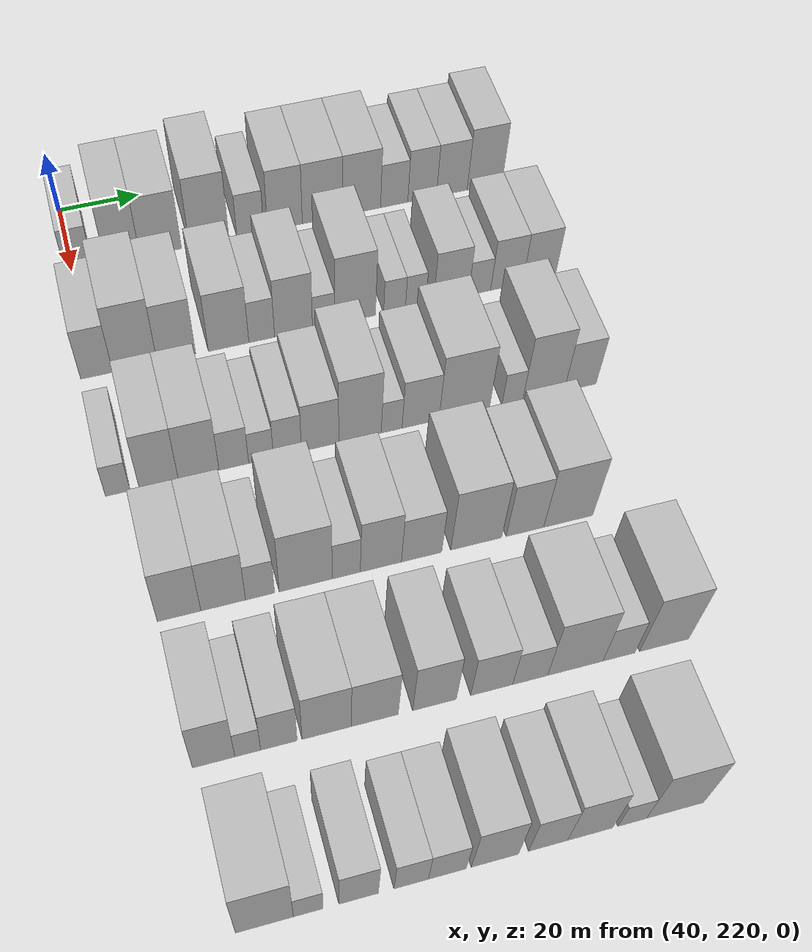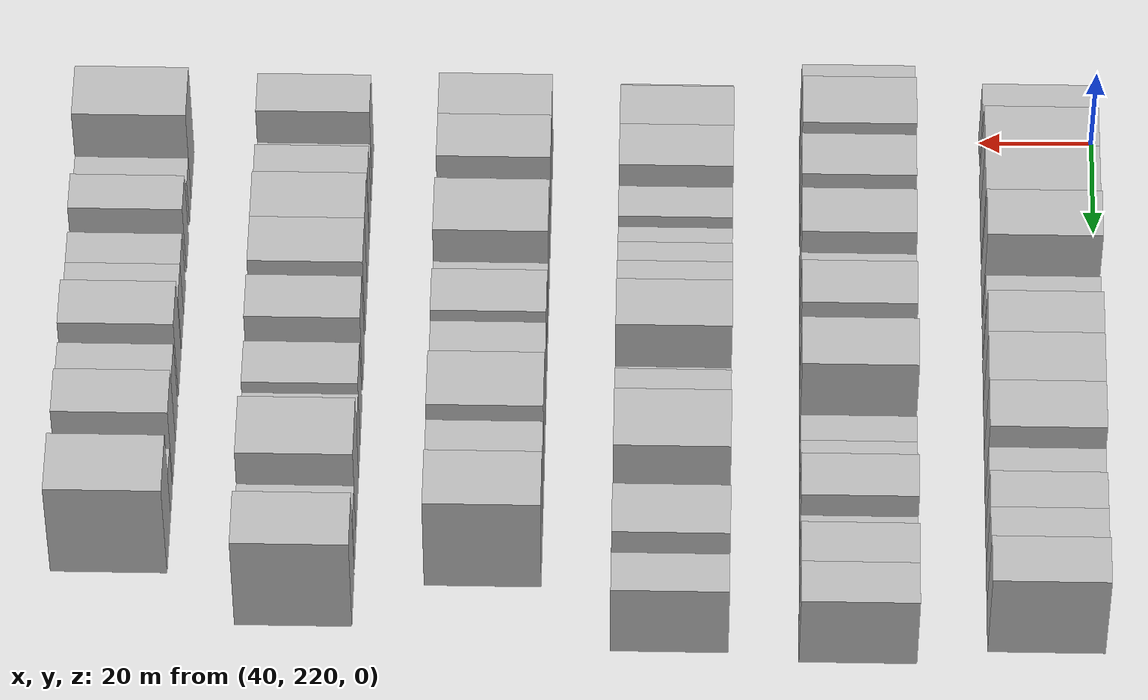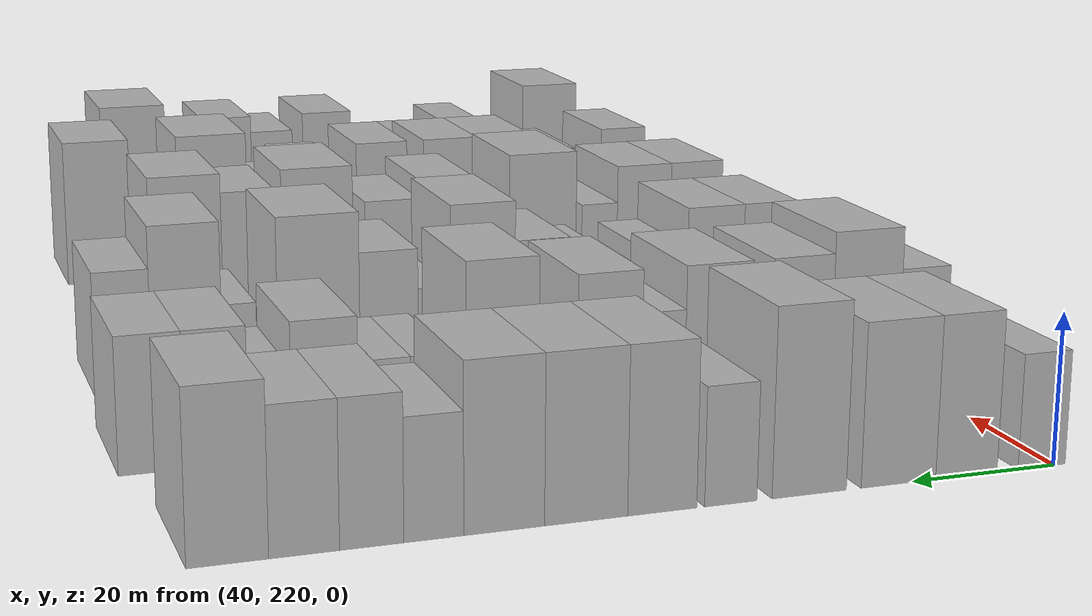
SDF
<sdf version="1.6">
 <world name="default">
  <model name="building_87">
   <static>1</static>
   <pose>50.0000 221.7886 0 0.000000 0.000000 0.000000</pose>
   <link name="link">
    <pose>0 0 7.50 0 0 0</pose>
    <collision name="collision"><geometry><box><size>20.0000 6.7713 15.0000</size></box></geometry></collision>
    <visual name="visual">
     <cast_shadows>0</cast_shadows>
     <geometry><box><size>20.0000 6.7713 15.0000</size></box></geometry>
     <material>
      <script>
       <uri>model://HANNAS_wall/materials/scripts</uri>
       <uri>model://HANNAS_wall/materials/textures</uri>
       <name>vrc/HANNAS_wall</name>
      </script>
     </material>
    </visual>
   </link>
  </model>
  <model name="building_88">
   <static>1</static>
   <pose>50.0000 232.4870 0 0.000000 0.000000 0.000000</pose>
   <link name="link">
    <pose>0 0 10.50 0 0 0</pose>
    <collision name="collision"><geometry><box><size>20.0000 8.6255 21.0000</size></box></geometry></collision>
    <visual name="visual">
     <cast_shadows>0</cast_shadows>
     <geometry><box><size>20.0000 8.6255 21.0000</size></box></geometry>
     <material>
      <script>
       <uri>model://HANNAS_wall/materials/scripts</uri>
       <uri>model://HANNAS_wall/materials/textures</uri>
       <name>vrc/HANNAS_wall</name>
      </script>
     </material>
    </visual>
   </link>
  </model>
  <model name="building_89">
   <static>1</static>
   <pose>50.0000 241.9355 0 0.000000 0.000000 0.000000</pose>
   <link name="link">
    <pose>0 0 10.50 0 0 0</pose>
    <collision name="collision"><geometry><box><size>20.0000 10.2713 21.0000</size></box></geometry></collision>
    <visual name="visual">
     <cast_shadows>0</cast_shadows>
     <geometry><box><size>20.0000 10.2713 21.0000</size></box></geometry>
     <material>
      <script>
       <uri>model://HANNAS_wall/materials/scripts</uri>
       <uri>model://HANNAS_wall/materials/textures</uri>
       <name>vrc/HANNAS_wall</name>
      </script>
     </material>
    </visual>
   </link>
  </model>
  <model name="building_90">
   <static>1</static>
   <pose>50.0000 254.0414 0 0.000000 0.000000 0.000000</pose>
   <link name="link">
    <pose>0 0 12.00 0 0 0</pose>
    <collision name="collision"><geometry><box><size>20.0000 9.9406 24.0000</size></box></geometry></collision>
    <visual name="visual">
     <cast_shadows>0</cast_shadows>
     <geometry><box><size>20.0000 9.9406 24.0000</size></box></geometry>
     <material>
      <script>
       <uri>model://HANNAS_wall/materials/scripts</uri>
       <uri>model://HANNAS_wall/materials/textures</uri>
       <name>vrc/HANNAS_wall</name>
      </script>
     </material>
    </visual>
   </link>
  </model>
  <model name="building_91">
   <static>1</static>
   <pose>50.0000 264.4250 0 0.000000 0.000000 0.000000</pose>
   <link name="link">
    <pose>0 0 7.50 0 0 0</pose>
    <collision name="collision"><geometry><box><size>20.0000 6.8265 15.0000</size></box></geometry></collision>
    <visual name="visual">
     <cast_shadows>0</cast_shadows>
     <geometry><box><size>20.0000 6.8265 15.0000</size></box></geometry>
     <material>
      <script>
       <uri>model://HANNAS_wall/materials/scripts</uri>
       <uri>model://HANNAS_wall/materials/textures</uri>
       <name>vrc/HANNAS_wall</name>
      </script>
     </material>
    </visual>
   </link>
  </model>
  <model name="building_92">
   <static>1</static>
   <pose>50.0000 273.2584 0 0.000000 0.000000 0.000000</pose>
   <link name="link">
    <pose>0 0 10.50 0 0 0</pose>
    <collision name="collision"><geometry><box><size>20.0000 8.8403 21.0000</size></box></geometry></collision>
    <visual name="visual">
     <cast_shadows>0</cast_shadows>
     <geometry><box><size>20.0000 8.8403 21.0000</size></box></geometry>
     <material>
      <script>
       <uri>model://HANNAS_wall/materials/scripts</uri>
       <uri>model://HANNAS_wall/materials/textures</uri>
       <name>vrc/HANNAS_wall</name>
      </script>
     </material>
    </visual>
   </link>
  </model>
  <model name="building_93">
   <static>1</static>
   <pose>50.0000 282.8624 0 0.000000 0.000000 0.000000</pose>
   <link name="link">
    <pose>0 0 10.50 0 0 0</pose>
    <collision name="collision"><geometry><box><size>20.0000 10.3677 21.0000</size></box></geometry></collision>
    <visual name="visual">
     <cast_shadows>0</cast_shadows>
     <geometry><box><size>20.0000 10.3677 21.0000</size></box></geometry>
     <material>
      <script>
       <uri>model://HANNAS_wall/materials/scripts</uri>
       <uri>model://HANNAS_wall/materials/textures</uri>
       <name>vrc/HANNAS_wall</name>
      </script>
     </material>
    </visual>
   </link>
  </model>
  <model name="building_94">
   <static>1</static>
   <pose>50.0000 292.9750 0 0.000000 0.000000 0.000000</pose>
   <link name="link">
    <pose>0 0 10.50 0 0 0</pose>
    <collision name="collision"><geometry><box><size>20.0000 9.8575 21.0000</size></box></geometry></collision>
    <visual name="visual">
     <cast_shadows>0</cast_shadows>
     <geometry><box><size>20.0000 9.8575 21.0000</size></box></geometry>
     <material>
      <script>
       <uri>model://HANNAS_wall/materials/scripts</uri>
       <uri>model://HANNAS_wall/materials/textures</uri>
       <name>vrc/HANNAS_wall</name>
      </script>
     </material>
    </visual>
   </link>
  </model>
  <model name="building_95">
   <static>1</static>
   <pose>50.0000 301.4691 0 0.000000 0.000000 0.000000</pose>
   <link name="link">
    <pose>0 0 7.50 0 0 0</pose>
    <collision name="collision"><geometry><box><size>20.0000 7.1307 15.0000</size></box></geometry></collision>
    <visual name="visual">
     <cast_shadows>0</cast_shadows>
     <geometry><box><size>20.0000 7.1307 15.0000</size></box></geometry>
     <material>
      <script>
       <uri>model://HANNAS_wall/materials/scripts</uri>
       <uri>model://HANNAS_wall/materials/textures</uri>
       <name>vrc/HANNAS_wall</name>
      </script>
     </material>
    </visual>
   </link>
  </model>
  <model name="building_96">
   <static>1</static>
   <pose>50.0000 308.8011 0 0.000000 0.000000 0.000000</pose>
   <link name="link">
    <pose>0 0 9.00 0 0 0</pose>
    <collision name="collision"><geometry><box><size>20.0000 7.5333 18.0000</size></box></geometry></collision>
    <visual name="visual">
     <cast_shadows>0</cast_shadows>
     <geometry><box><size>20.0000 7.5333 18.0000</size></box></geometry>
     <material>
      <script>
       <uri>model://HANNAS_wall/materials/scripts</uri>
       <uri>model://HANNAS_wall/materials/textures</uri>
       <name>vrc/HANNAS_wall</name>
      </script>
     </material>
    </visual>
   </link>
  </model>
  <model name="building_97">
   <static>1</static>
   <pose>50.0000 316.6374 0 0.000000 0.000000 0.000000</pose>
   <link name="link">
    <pose>0 0 9.00 0 0 0</pose>
    <collision name="collision"><geometry><box><size>20.0000 8.1393 18.0000</size></box></geometry></collision>
    <visual name="visual">
     <cast_shadows>0</cast_shadows>
     <geometry><box><size>20.0000 8.1393 18.0000</size></box></geometry>
     <material>
      <script>
       <uri>model://HANNAS_wall/materials/scripts</uri>
       <uri>model://HANNAS_wall/materials/textures</uri>
       <name>vrc/HANNAS_wall</name>
      </script>
     </material>
    </visual>
   </link>
  </model>
  <model name="building_98">
   <static>1</static>
   <pose>50.0000 325.3593 0 0.000000 0.000000 0.000000</pose>
   <link name="link">
    <pose>0 0 10.50 0 0 0</pose>
    <collision name="collision"><geometry><box><size>20.0000 9.3044 21.0000</size></box></geometry></collision>
    <visual name="visual">
     <cast_shadows>0</cast_shadows>
     <geometry><box><size>20.0000 9.3044 21.0000</size></box></geometry>
     <material>
      <script>
       <uri>model://HANNAS_wall/materials/scripts</uri>
       <uri>model://HANNAS_wall/materials/textures</uri>
       <name>vrc/HANNAS_wall</name>
      </script>
     </material>
    </visual>
   </link>
  </model>
  <model name="building_208">
   <static>1</static>
   <pose>82.0000 220.7102 0 0.000000 0.000000 0.000000</pose>
   <link name="link">
    <pose>0 0 9.00 0 0 0</pose>
    <collision name="collision"><geometry><box><size>20.0000 7.4942 18.0000</size></box></geometry></collision>
    <visual name="visual">
     <cast_shadows>0</cast_shadows>
     <geometry><box><size>20.0000 7.4942 18.0000</size></box></geometry>
     <material>
      <script>
       <uri>model://HANNAS_wall/materials/scripts</uri>
       <uri>model://HANNAS_wall/materials/textures</uri>
       <name>vrc/HANNAS_wall</name>
      </script>
     </material>
    </visual>
   </link>
  </model>
  <model name="building_209">
   <static>1</static>
   <pose>82.0000 229.6646 0 0.000000 0.000000 0.000000</pose>
   <link name="link">
    <pose>0 0 12.00 0 0 0</pose>
    <collision name="collision"><geometry><box><size>20.0000 10.4145 24.0000</size></box></geometry></collision>
    <visual name="visual">
     <cast_shadows>0</cast_shadows>
     <geometry><box><size>20.0000 10.4145 24.0000</size></box></geometry>
     <material>
      <script>
       <uri>model://HANNAS_wall/materials/scripts</uri>
       <uri>model://HANNAS_wall/materials/textures</uri>
       <name>vrc/HANNAS_wall</name>
      </script>
     </material>
    </visual>
   </link>
  </model>
  <model name="building_210">
   <static>1</static>
   <pose>82.0000 239.4219 0 0.000000 0.000000 0.000000</pose>
   <link name="link">
    <pose>0 0 10.50 0 0 0</pose>
    <collision name="collision"><geometry><box><size>20.0000 9.1001 21.0000</size></box></geometry></collision>
    <visual name="visual">
     <cast_shadows>0</cast_shadows>
     <geometry><box><size>20.0000 9.1001 21.0000</size></box></geometry>
     <material>
      <script>
       <uri>model://HANNAS_wall/materials/scripts</uri>
       <uri>model://HANNAS_wall/materials/textures</uri>
       <name>vrc/HANNAS_wall</name>
      </script>
     </material>
    </visual>
   </link>
  </model>
  <model name="building_211">
   <static>1</static>
   <pose>82.0000 251.8152 0 0.000000 0.000000 0.000000</pose>
   <link name="link">
    <pose>0 0 10.50 0 0 0</pose>
    <collision name="collision"><geometry><box><size>20.0000 9.6865 21.0000</size></box></geometry></collision>
    <visual name="visual">
     <cast_shadows>0</cast_shadows>
     <geometry><box><size>20.0000 9.6865 21.0000</size></box></geometry>
     <material>
      <script>
       <uri>model://HANNAS_wall/materials/scripts</uri>
       <uri>model://HANNAS_wall/materials/textures</uri>
       <name>vrc/HANNAS_wall</name>
      </script>
     </material>
    </visual>
   </link>
  </model>
  <model name="building_212">
   <static>1</static>
   <pose>82.0000 259.7631 0 0.000000 0.000000 0.000000</pose>
   <link name="link">
    <pose>0 0 7.50 0 0 0</pose>
    <collision name="collision"><geometry><box><size>20.0000 6.2091 15.0000</size></box></geometry></collision>
    <visual name="visual">
     <cast_shadows>0</cast_shadows>
     <geometry><box><size>20.0000 6.2091 15.0000</size></box></geometry>
     <material>
      <script>
       <uri>model://HANNAS_wall/materials/scripts</uri>
       <uri>model://HANNAS_wall/materials/textures</uri>
       <name>vrc/HANNAS_wall</name>
      </script>
     </material>
    </visual>
   </link>
  </model>
  <model name="building_213">
   <static>1</static>
   <pose>82.0000 267.4529 0 0.000000 0.000000 0.000000</pose>
   <link name="link">
    <pose>0 0 10.50 0 0 0</pose>
    <collision name="collision"><geometry><box><size>20.0000 9.1706 21.0000</size></box></geometry></collision>
    <visual name="visual">
     <cast_shadows>0</cast_shadows>
     <geometry><box><size>20.0000 9.1706 21.0000</size></box></geometry>
     <material>
      <script>
       <uri>model://HANNAS_wall/materials/scripts</uri>
       <uri>model://HANNAS_wall/materials/textures</uri>
       <name>vrc/HANNAS_wall</name>
      </script>
     </material>
    </visual>
   </link>
  </model>
  <model name="building_214">
   <static>1</static>
   <pose>82.0000 274.7381 0 0.000000 0.000000 0.000000</pose>
   <link name="link">
    <pose>0 0 6.00 0 0 0</pose>
    <collision name="collision"><geometry><box><size>20.0000 5.3997 12.0000</size></box></geometry></collision>
    <visual name="visual">
     <cast_shadows>0</cast_shadows>
     <geometry><box><size>20.0000 5.3997 12.0000</size></box></geometry>
     <material>
      <script>
       <uri>model://HANNAS_wall/materials/scripts</uri>
       <uri>model://HANNAS_wall/materials/textures</uri>
       <name>vrc/HANNAS_wall</name>
      </script>
     </material>
    </visual>
   </link>
  </model>
  <model name="building_215">
   <static>1</static>
   <pose>82.0000 282.4617 0 0.000000 0.000000 0.000000</pose>
   <link name="link">
    <pose>0 0 12.00 0 0 0</pose>
    <collision name="collision"><geometry><box><size>20.0000 10.0475 24.0000</size></box></geometry></collision>
    <visual name="visual">
     <cast_shadows>0</cast_shadows>
     <geometry><box><size>20.0000 10.0475 24.0000</size></box></geometry>
     <material>
      <script>
       <uri>model://HANNAS_wall/materials/scripts</uri>
       <uri>model://HANNAS_wall/materials/textures</uri>
       <name>vrc/HANNAS_wall</name>
      </script>
     </material>
    </visual>
   </link>
  </model>
  <model name="building_216">
   <static>1</static>
   <pose>82.0000 292.1893 0 0.000000 0.000000 0.000000</pose>
   <link name="link">
    <pose>0 0 6.00 0 0 0</pose>
    <collision name="collision"><geometry><box><size>20.0000 5.4076 12.0000</size></box></geometry></collision>
    <visual name="visual">
     <cast_shadows>0</cast_shadows>
     <geometry><box><size>20.0000 5.4076 12.0000</size></box></geometry>
     <material>
      <script>
       <uri>model://HANNAS_wall/materials/scripts</uri>
       <uri>model://HANNAS_wall/materials/textures</uri>
       <name>vrc/HANNAS_wall</name>
      </script>
     </material>
    </visual>
   </link>
  </model>
  <model name="building_217">
   <static>1</static>
   <pose>82.0000 297.4069 0 0.000000 0.000000 0.000000</pose>
   <link name="link">
    <pose>0 0 6.00 0 0 0</pose>
    <collision name="collision"><geometry><box><size>20.0000 5.0276 12.0000</size></box></geometry></collision>
    <visual name="visual">
     <cast_shadows>0</cast_shadows>
     <geometry><box><size>20.0000 5.0276 12.0000</size></box></geometry>
     <material>
      <script>
       <uri>model://HANNAS_wall/materials/scripts</uri>
       <uri>model://HANNAS_wall/materials/textures</uri>
       <name>vrc/HANNAS_wall</name>
      </script>
     </material>
    </visual>
   </link>
  </model>
  <model name="building_218">
   <static>1</static>
   <pose>82.0000 306.2997 0 0.000000 0.000000 0.000000</pose>
   <link name="link">
    <pose>0 0 9.00 0 0 0</pose>
    <collision name="collision"><geometry><box><size>20.0000 8.7580 18.0000</size></box></geometry></collision>
    <visual name="visual">
     <cast_shadows>0</cast_shadows>
     <geometry><box><size>20.0000 8.7580 18.0000</size></box></geometry>
     <material>
      <script>
       <uri>model://HANNAS_wall/materials/scripts</uri>
       <uri>model://HANNAS_wall/materials/textures</uri>
       <name>vrc/HANNAS_wall</name>
      </script>
     </material>
    </visual>
   </link>
  </model>
  <model name="building_219">
   <static>1</static>
   <pose>82.0000 313.4618 0 0.000000 0.000000 0.000000</pose>
   <link name="link">
    <pose>0 0 6.00 0 0 0</pose>
    <collision name="collision"><geometry><box><size>20.0000 5.5663 12.0000</size></box></geometry></collision>
    <visual name="visual">
     <cast_shadows>0</cast_shadows>
     <geometry><box><size>20.0000 5.5663 12.0000</size></box></geometry>
     <material>
      <script>
       <uri>model://HANNAS_wall/materials/scripts</uri>
       <uri>model://HANNAS_wall/materials/textures</uri>
       <name>vrc/HANNAS_wall</name>
      </script>
     </material>
    </visual>
   </link>
  </model>
  <model name="building_220">
   <static>1</static>
   <pose>82.0000 320.3215 0 0.000000 0.000000 0.000000</pose>
   <link name="link">
    <pose>0 0 9.00 0 0 0</pose>
    <collision name="collision"><geometry><box><size>20.0000 8.1531 18.0000</size></box></geometry></collision>
    <visual name="visual">
     <cast_shadows>0</cast_shadows>
     <geometry><box><size>20.0000 8.1531 18.0000</size></box></geometry>
     <material>
      <script>
       <uri>model://HANNAS_wall/materials/scripts</uri>
       <uri>model://HANNAS_wall/materials/textures</uri>
       <name>vrc/HANNAS_wall</name>
      </script>
     </material>
    </visual>
   </link>
  </model>
  <model name="building_221">
   <static>1</static>
   <pose>82.0000 328.5545 0 0.000000 0.000000 0.000000</pose>
   <link name="link">
    <pose>0 0 9.00 0 0 0</pose>
    <collision name="collision"><geometry><box><size>20.0000 8.3128 18.0000</size></box></geometry></collision>
    <visual name="visual">
     <cast_shadows>0</cast_shadows>
     <geometry><box><size>20.0000 8.3128 18.0000</size></box></geometry>
     <material>
      <script>
       <uri>model://HANNAS_wall/materials/scripts</uri>
       <uri>model://HANNAS_wall/materials/textures</uri>
       <name>vrc/HANNAS_wall</name>
      </script>
     </material>
    </visual>
   </link>
  </model>
  <model name="building_334">
   <static>1</static>
   <pose>114.0000 219.9616 0 0.000000 0.000000 0.000000</pose>
   <link name="link">
    <pose>0 0 6.00 0 0 0</pose>
    <collision name="collision"><geometry><box><size>20.0000 5.4764 12.0000</size></box></geometry></collision>
    <visual name="visual">
     <cast_shadows>0</cast_shadows>
     <geometry><box><size>20.0000 5.4764 12.0000</size></box></geometry>
     <material>
      <script>
       <uri>model://HANNAS_wall/materials/scripts</uri>
       <uri>model://HANNAS_wall/materials/textures</uri>
       <name>vrc/HANNAS_wall</name>
      </script>
     </material>
    </visual>
   </link>
  </model>
  <model name="building_335">
   <static>1</static>
   <pose>114.0000 229.0413 0 0.000000 0.000000 0.000000</pose>
   <link name="link">
    <pose>0 0 10.50 0 0 0</pose>
    <collision name="collision"><geometry><box><size>20.0000 8.6831 21.0000</size></box></geometry></collision>
    <visual name="visual">
     <cast_shadows>0</cast_shadows>
     <geometry><box><size>20.0000 8.6831 21.0000</size></box></geometry>
     <material>
      <script>
       <uri>model://HANNAS_wall/materials/scripts</uri>
       <uri>model://HANNAS_wall/materials/textures</uri>
       <name>vrc/HANNAS_wall</name>
      </script>
     </material>
    </visual>
   </link>
  </model>
  <model name="building_336">
   <static>1</static>
   <pose>114.0000 237.9569 0 0.000000 0.000000 0.000000</pose>
   <link name="link">
    <pose>0 0 10.50 0 0 0</pose>
    <collision name="collision"><geometry><box><size>20.0000 9.1480 21.0000</size></box></geometry></collision>
    <visual name="visual">
     <cast_shadows>0</cast_shadows>
     <geometry><box><size>20.0000 9.1480 21.0000</size></box></geometry>
     <material>
      <script>
       <uri>model://HANNAS_wall/materials/scripts</uri>
       <uri>model://HANNAS_wall/materials/textures</uri>
       <name>vrc/HANNAS_wall</name>
      </script>
     </material>
    </visual>
   </link>
  </model>
  <model name="building_337">
   <static>1</static>
   <pose>114.0000 245.8881 0 0.000000 0.000000 0.000000</pose>
   <link name="link">
    <pose>0 0 7.50 0 0 0</pose>
    <collision name="collision"><geometry><box><size>20.0000 6.7144 15.0000</size></box></geometry></collision>
    <visual name="visual">
     <cast_shadows>0</cast_shadows>
     <geometry><box><size>20.0000 6.7144 15.0000</size></box></geometry>
     <material>
      <script>
       <uri>model://HANNAS_wall/materials/scripts</uri>
       <uri>model://HANNAS_wall/materials/textures</uri>
       <name>vrc/HANNAS_wall</name>
      </script>
     </material>
    </visual>
   </link>
  </model>
  <model name="building_338">
   <static>1</static>
   <pose>114.0000 252.0536 0 0.000000 0.000000 0.000000</pose>
   <link name="link">
    <pose>0 0 6.00 0 0 0</pose>
    <collision name="collision"><geometry><box><size>20.0000 5.6168 12.0000</size></box></geometry></collision>
    <visual name="visual">
     <cast_shadows>0</cast_shadows>
     <geometry><box><size>20.0000 5.6168 12.0000</size></box></geometry>
     <material>
      <script>
       <uri>model://HANNAS_wall/materials/scripts</uri>
       <uri>model://HANNAS_wall/materials/textures</uri>
       <name>vrc/HANNAS_wall</name>
      </script>
     </material>
    </visual>
   </link>
  </model>
  <model name="building_339">
   <static>1</static>
   <pose>114.0000 258.0613 0 0.000000 0.000000 0.000000</pose>
   <link name="link">
    <pose>0 0 7.50 0 0 0</pose>
    <collision name="collision"><geometry><box><size>20.0000 6.3986 15.0000</size></box></geometry></collision>
    <visual name="visual">
     <cast_shadows>0</cast_shadows>
     <geometry><box><size>20.0000 6.3986 15.0000</size></box></geometry>
     <material>
      <script>
       <uri>model://HANNAS_wall/materials/scripts</uri>
       <uri>model://HANNAS_wall/materials/textures</uri>
       <name>vrc/HANNAS_wall</name>
      </script>
     </material>
    </visual>
   </link>
  </model>
  <model name="building_340">
   <static>1</static>
   <pose>114.0000 265.5376 0 0.000000 0.000000 0.000000</pose>
   <link name="link">
    <pose>0 0 9.00 0 0 0</pose>
    <collision name="collision"><geometry><box><size>20.0000 8.5540 18.0000</size></box></geometry></collision>
    <visual name="visual">
     <cast_shadows>0</cast_shadows>
     <geometry><box><size>20.0000 8.5540 18.0000</size></box></geometry>
     <material>
      <script>
       <uri>model://HANNAS_wall/materials/scripts</uri>
       <uri>model://HANNAS_wall/materials/textures</uri>
       <name>vrc/HANNAS_wall</name>
      </script>
     </material>
    </visual>
   </link>
  </model>
  <model name="building_341">
   <static>1</static>
   <pose>114.0000 274.7698 0 0.000000 0.000000 0.000000</pose>
   <link name="link">
    <pose>0 0 12.00 0 0 0</pose>
    <collision name="collision"><geometry><box><size>20.0000 9.9104 24.0000</size></box></geometry></collision>
    <visual name="visual">
     <cast_shadows>0</cast_shadows>
     <geometry><box><size>20.0000 9.9104 24.0000</size></box></geometry>
     <material>
      <script>
       <uri>model://HANNAS_wall/materials/scripts</uri>
       <uri>model://HANNAS_wall/materials/textures</uri>
       <name>vrc/HANNAS_wall</name>
      </script>
     </material>
    </visual>
   </link>
  </model>
  <model name="building_342">
   <static>1</static>
   <pose>114.0000 282.1615 0 0.000000 0.000000 0.000000</pose>
   <link name="link">
    <pose>0 0 6.00 0 0 0</pose>
    <collision name="collision"><geometry><box><size>20.0000 4.8731 12.0000</size></box></geometry></collision>
    <visual name="visual">
     <cast_shadows>0</cast_shadows>
     <geometry><box><size>20.0000 4.8731 12.0000</size></box></geometry>
     <material>
      <script>
       <uri>model://HANNAS_wall/materials/scripts</uri>
       <uri>model://HANNAS_wall/materials/textures</uri>
       <name>vrc/HANNAS_wall</name>
      </script>
     </material>
    </visual>
   </link>
  </model>
  <model name="building_343">
   <static>1</static>
   <pose>114.0000 288.9369 0 0.000000 0.000000 0.000000</pose>
   <link name="link">
    <pose>0 0 9.00 0 0 0</pose>
    <collision name="collision"><geometry><box><size>20.0000 8.6777 18.0000</size></box></geometry></collision>
    <visual name="visual">
     <cast_shadows>0</cast_shadows>
     <geometry><box><size>20.0000 8.6777 18.0000</size></box></geometry>
     <material>
      <script>
       <uri>model://HANNAS_wall/materials/scripts</uri>
       <uri>model://HANNAS_wall/materials/textures</uri>
       <name>vrc/HANNAS_wall</name>
      </script>
     </material>
    </visual>
   </link>
  </model>
  <model name="building_344">
   <static>1</static>
   <pose>114.0000 299.2702 0 0.000000 0.000000 0.000000</pose>
   <link name="link">
    <pose>0 0 12.00 0 0 0</pose>
    <collision name="collision"><geometry><box><size>20.0000 11.9890 24.0000</size></box></geometry></collision>
    <visual name="visual">
     <cast_shadows>0</cast_shadows>
     <geometry><box><size>20.0000 11.9890 24.0000</size></box></geometry>
     <material>
      <script>
       <uri>model://HANNAS_wall/materials/scripts</uri>
       <uri>model://HANNAS_wall/materials/textures</uri>
       <name>vrc/HANNAS_wall</name>
      </script>
     </material>
    </visual>
   </link>
  </model>
  <model name="building_345">
   <static>1</static>
   <pose>114.0000 310.7438 0 0.000000 0.000000 0.000000</pose>
   <link name="link">
    <pose>0 0 6.00 0 0 0</pose>
    <collision name="collision"><geometry><box><size>20.0000 4.9583 12.0000</size></box></geometry></collision>
    <visual name="visual">
     <cast_shadows>0</cast_shadows>
     <geometry><box><size>20.0000 4.9583 12.0000</size></box></geometry>
     <material>
      <script>
       <uri>model://HANNAS_wall/materials/scripts</uri>
       <uri>model://HANNAS_wall/materials/textures</uri>
       <name>vrc/HANNAS_wall</name>
      </script>
     </material>
    </visual>
   </link>
  </model>
  <model name="building_346">
   <static>1</static>
   <pose>114.0000 318.2319 0 0.000000 0.000000 0.000000</pose>
   <link name="link">
    <pose>0 0 12.00 0 0 0</pose>
    <collision name="collision"><geometry><box><size>20.0000 10.0179 24.0000</size></box></geometry></collision>
    <visual name="visual">
     <cast_shadows>0</cast_shadows>
     <geometry><box><size>20.0000 10.0179 24.0000</size></box></geometry>
     <material>
      <script>
       <uri>model://HANNAS_wall/materials/scripts</uri>
       <uri>model://HANNAS_wall/materials/textures</uri>
       <name>vrc/HANNAS_wall</name>
      </script>
     </material>
    </visual>
   </link>
  </model>
  <model name="building_347">
   <static>1</static>
   <pose>114.0000 327.1444 0 0.000000 0.000000 0.000000</pose>
   <link name="link">
    <pose>0 0 9.00 0 0 0</pose>
    <collision name="collision"><geometry><box><size>20.0000 7.8071 18.0000</size></box></geometry></collision>
    <visual name="visual">
     <cast_shadows>0</cast_shadows>
     <geometry><box><size>20.0000 7.8071 18.0000</size></box></geometry>
     <material>
      <script>
       <uri>model://HANNAS_wall/materials/scripts</uri>
       <uri>model://HANNAS_wall/materials/textures</uri>
       <name>vrc/HANNAS_wall</name>
      </script>
     </material>
    </visual>
   </link>
  </model>
  <model name="building_452">
   <static>1</static>
   <pose>146.0000 227.1172 0 0.000000 0.000000 0.000000</pose>
   <link name="link">
    <pose>0 0 10.50 0 0 0</pose>
    <collision name="collision"><geometry><box><size>20.0000 9.1714 21.0000</size></box></geometry></collision>
    <visual name="visual">
     <cast_shadows>0</cast_shadows>
     <geometry><box><size>20.0000 9.1714 21.0000</size></box></geometry>
     <material>
      <script>
       <uri>model://HANNAS_wall/materials/scripts</uri>
       <uri>model://HANNAS_wall/materials/textures</uri>
       <name>vrc/HANNAS_wall</name>
      </script>
     </material>
    </visual>
   </link>
  </model>
  <model name="building_453">
   <static>1</static>
   <pose>146.0000 236.4457 0 0.000000 0.000000 0.000000</pose>
   <link name="link">
    <pose>0 0 10.50 0 0 0</pose>
    <collision name="collision"><geometry><box><size>20.0000 9.4857 21.0000</size></box></geometry></collision>
    <visual name="visual">
     <cast_shadows>0</cast_shadows>
     <geometry><box><size>20.0000 9.4857 21.0000</size></box></geometry>
     <material>
      <script>
       <uri>model://HANNAS_wall/materials/scripts</uri>
       <uri>model://HANNAS_wall/materials/textures</uri>
       <name>vrc/HANNAS_wall</name>
      </script>
     </material>
    </visual>
   </link>
  </model>
  <model name="building_454">
   <static>1</static>
   <pose>146.0000 244.2884 0 0.000000 0.000000 0.000000</pose>
   <link name="link">
    <pose>0 0 7.50 0 0 0</pose>
    <collision name="collision"><geometry><box><size>20.0000 6.1997 15.0000</size></box></geometry></collision>
    <visual name="visual">
     <cast_shadows>0</cast_shadows>
     <geometry><box><size>20.0000 6.1997 15.0000</size></box></geometry>
     <material>
      <script>
       <uri>model://HANNAS_wall/materials/scripts</uri>
       <uri>model://HANNAS_wall/materials/textures</uri>
       <name>vrc/HANNAS_wall</name>
      </script>
     </material>
    </visual>
   </link>
  </model>
  <model name="building_455">
   <static>1</static>
   <pose>146.0000 254.1141 0 0.000000 0.000000 0.000000</pose>
   <link name="link">
    <pose>0 0 12.00 0 0 0</pose>
    <collision name="collision"><geometry><box><size>20.0000 11.4516 24.0000</size></box></geometry></collision>
    <visual name="visual">
     <cast_shadows>0</cast_shadows>
     <geometry><box><size>20.0000 11.4516 24.0000</size></box></geometry>
     <material>
      <script>
       <uri>model://HANNAS_wall/materials/scripts</uri>
       <uri>model://HANNAS_wall/materials/textures</uri>
       <name>vrc/HANNAS_wall</name>
      </script>
     </material>
    </visual>
   </link>
  </model>
  <model name="building_456">
   <static>1</static>
   <pose>146.0000 262.8899 0 0.000000 0.000000 0.000000</pose>
   <link name="link">
    <pose>0 0 7.50 0 0 0</pose>
    <collision name="collision"><geometry><box><size>20.0000 6.1000 15.0000</size></box></geometry></collision>
    <visual name="visual">
     <cast_shadows>0</cast_shadows>
     <geometry><box><size>20.0000 6.1000 15.0000</size></box></geometry>
     <material>
      <script>
       <uri>model://HANNAS_wall/materials/scripts</uri>
       <uri>model://HANNAS_wall/materials/textures</uri>
       <name>vrc/HANNAS_wall</name>
      </script>
     </material>
    </visual>
   </link>
  </model>
  <model name="building_457">
   <static>1</static>
   <pose>146.0000 270.4659 0 0.000000 0.000000 0.000000</pose>
   <link name="link">
    <pose>0 0 10.50 0 0 0</pose>
    <collision name="collision"><geometry><box><size>20.0000 9.0520 21.0000</size></box></geometry></collision>
    <visual name="visual">
     <cast_shadows>0</cast_shadows>
     <geometry><box><size>20.0000 9.0520 21.0000</size></box></geometry>
     <material>
      <script>
       <uri>model://HANNAS_wall/materials/scripts</uri>
       <uri>model://HANNAS_wall/materials/textures</uri>
       <name>vrc/HANNAS_wall</name>
      </script>
     </material>
    </visual>
   </link>
  </model>
  <model name="building_458">
   <static>1</static>
   <pose>146.0000 279.4520 0 0.000000 0.000000 0.000000</pose>
   <link name="link">
    <pose>0 0 9.00 0 0 0</pose>
    <collision name="collision"><geometry><box><size>20.0000 8.9203 18.0000</size></box></geometry></collision>
    <visual name="visual">
     <cast_shadows>0</cast_shadows>
     <geometry><box><size>20.0000 8.9203 18.0000</size></box></geometry>
     <material>
      <script>
       <uri>model://HANNAS_wall/materials/scripts</uri>
       <uri>model://HANNAS_wall/materials/textures</uri>
       <name>vrc/HANNAS_wall</name>
      </script>
     </material>
    </visual>
   </link>
  </model>
  <model name="building_459">
   <static>1</static>
   <pose>146.0000 291.6312 0 0.000000 0.000000 0.000000</pose>
   <link name="link">
    <pose>0 0 12.00 0 0 0</pose>
    <collision name="collision"><geometry><box><size>20.0000 11.4382 24.0000</size></box></geometry></collision>
    <visual name="visual">
     <cast_shadows>0</cast_shadows>
     <geometry><box><size>20.0000 11.4382 24.0000</size></box></geometry>
     <material>
      <script>
       <uri>model://HANNAS_wall/materials/scripts</uri>
       <uri>model://HANNAS_wall/materials/textures</uri>
       <name>vrc/HANNAS_wall</name>
      </script>
     </material>
    </visual>
   </link>
  </model>
  <model name="building_460">
   <static>1</static>
   <pose>146.0000 302.6022 0 0.000000 0.000000 0.000000</pose>
   <link name="link">
    <pose>0 0 10.50 0 0 0</pose>
    <collision name="collision"><geometry><box><size>20.0000 8.5038 21.0000</size></box></geometry></collision>
    <visual name="visual">
     <cast_shadows>0</cast_shadows>
     <geometry><box><size>20.0000 8.5038 21.0000</size></box></geometry>
     <material>
      <script>
       <uri>model://HANNAS_wall/materials/scripts</uri>
       <uri>model://HANNAS_wall/materials/textures</uri>
       <name>vrc/HANNAS_wall</name>
      </script>
     </material>
    </visual>
   </link>
  </model>
  <model name="building_461">
   <static>1</static>
   <pose>146.0000 312.4620 0 0.000000 0.000000 0.000000</pose>
   <link name="link">
    <pose>0 0 12.00 0 0 0</pose>
    <collision name="collision"><geometry><box><size>20.0000 11.2158 24.0000</size></box></geometry></collision>
    <visual name="visual">
     <cast_shadows>0</cast_shadows>
     <geometry><box><size>20.0000 11.2158 24.0000</size></box></geometry>
     <material>
      <script>
       <uri>model://HANNAS_wall/materials/scripts</uri>
       <uri>model://HANNAS_wall/materials/textures</uri>
       <name>vrc/HANNAS_wall</name>
      </script>
     </material>
    </visual>
   </link>
  </model>
  <model name="building_567">
   <static>1</static>
   <pose>178.0000 227.4876 0 0.000000 0.000000 0.000000</pose>
   <link name="link">
    <pose>0 0 10.50 0 0 0</pose>
    <collision name="collision"><geometry><box><size>20.0000 8.4381 21.0000</size></box></geometry></collision>
    <visual name="visual">
     <cast_shadows>0</cast_shadows>
     <geometry><box><size>20.0000 8.4381 21.0000</size></box></geometry>
     <material>
      <script>
       <uri>model://HANNAS_wall/materials/scripts</uri>
       <uri>model://HANNAS_wall/materials/textures</uri>
       <name>vrc/HANNAS_wall</name>
      </script>
     </material>
    </visual>
   </link>
  </model>
  <model name="building_568">
   <static>1</static>
   <pose>178.0000 234.2932 0 0.000000 0.000000 0.000000</pose>
   <link name="link">
    <pose>0 0 6.00 0 0 0</pose>
    <collision name="collision"><geometry><box><size>20.0000 5.1732 12.0000</size></box></geometry></collision>
    <visual name="visual">
     <cast_shadows>0</cast_shadows>
     <geometry><box><size>20.0000 5.1732 12.0000</size></box></geometry>
     <material>
      <script>
       <uri>model://HANNAS_wall/materials/scripts</uri>
       <uri>model://HANNAS_wall/materials/textures</uri>
       <name>vrc/HANNAS_wall</name>
      </script>
     </material>
    </visual>
   </link>
  </model>
  <model name="building_569">
   <static>1</static>
   <pose>178.0000 240.5420 0 0.000000 0.000000 0.000000</pose>
   <link name="link">
    <pose>0 0 9.00 0 0 0</pose>
    <collision name="collision"><geometry><box><size>20.0000 7.3244 18.0000</size></box></geometry></collision>
    <visual name="visual">
     <cast_shadows>0</cast_shadows>
     <geometry><box><size>20.0000 7.3244 18.0000</size></box></geometry>
     <material>
      <script>
       <uri>model://HANNAS_wall/materials/scripts</uri>
       <uri>model://HANNAS_wall/materials/textures</uri>
       <name>vrc/HANNAS_wall</name>
      </script>
     </material>
    </visual>
   </link>
  </model>
  <model name="building_570">
   <static>1</static>
   <pose>178.0000 250.1852 0 0.000000 0.000000 0.000000</pose>
   <link name="link">
    <pose>0 0 10.50 0 0 0</pose>
    <collision name="collision"><geometry><box><size>20.0000 9.9619 21.0000</size></box></geometry></collision>
    <visual name="visual">
     <cast_shadows>0</cast_shadows>
     <geometry><box><size>20.0000 9.9619 21.0000</size></box></geometry>
     <material>
      <script>
       <uri>model://HANNAS_wall/materials/scripts</uri>
       <uri>model://HANNAS_wall/materials/textures</uri>
       <name>vrc/HANNAS_wall</name>
      </script>
     </material>
    </visual>
   </link>
  </model>
  <model name="building_571">
   <static>1</static>
   <pose>178.0000 260.0116 0 0.000000 0.000000 0.000000</pose>
   <link name="link">
    <pose>0 0 10.50 0 0 0</pose>
    <collision name="collision"><geometry><box><size>20.0000 9.6910 21.0000</size></box></geometry></collision>
    <visual name="visual">
     <cast_shadows>0</cast_shadows>
     <geometry><box><size>20.0000 9.6910 21.0000</size></box></geometry>
     <material>
      <script>
       <uri>model://HANNAS_wall/materials/scripts</uri>
       <uri>model://HANNAS_wall/materials/textures</uri>
       <name>vrc/HANNAS_wall</name>
      </script>
     </material>
    </visual>
   </link>
  </model>
  <model name="building_572">
   <static>1</static>
   <pose>178.0000 272.4037 0 0.000000 0.000000 0.000000</pose>
   <link name="link">
    <pose>0 0 10.50 0 0 0</pose>
    <collision name="collision"><geometry><box><size>20.0000 9.0930 21.0000</size></box></geometry></collision>
    <visual name="visual">
     <cast_shadows>0</cast_shadows>
     <geometry><box><size>20.0000 9.0930 21.0000</size></box></geometry>
     <material>
      <script>
       <uri>model://HANNAS_wall/materials/scripts</uri>
       <uri>model://HANNAS_wall/materials/textures</uri>
       <name>vrc/HANNAS_wall</name>
      </script>
     </material>
    </visual>
   </link>
  </model>
  <model name="building_573">
   <static>1</static>
   <pose>178.0000 284.3723 0 0.000000 0.000000 0.000000</pose>
   <link name="link">
    <pose>0 0 9.00 0 0 0</pose>
    <collision name="collision"><geometry><box><size>20.0000 8.8443 18.0000</size></box></geometry></collision>
    <visual name="visual">
     <cast_shadows>0</cast_shadows>
     <geometry><box><size>20.0000 8.8443 18.0000</size></box></geometry>
     <material>
      <script>
       <uri>model://HANNAS_wall/materials/scripts</uri>
       <uri>model://HANNAS_wall/materials/textures</uri>
       <name>vrc/HANNAS_wall</name>
      </script>
     </material>
    </visual>
   </link>
  </model>
  <model name="building_574">
   <static>1</static>
   <pose>178.0000 292.5041 0 0.000000 0.000000 0.000000</pose>
   <link name="link">
    <pose>0 0 7.50 0 0 0</pose>
    <collision name="collision"><geometry><box><size>20.0000 7.4193 15.0000</size></box></geometry></collision>
    <visual name="visual">
     <cast_shadows>0</cast_shadows>
     <geometry><box><size>20.0000 7.4193 15.0000</size></box></geometry>
     <material>
      <script>
       <uri>model://HANNAS_wall/materials/scripts</uri>
       <uri>model://HANNAS_wall/materials/textures</uri>
       <name>vrc/HANNAS_wall</name>
      </script>
     </material>
    </visual>
   </link>
  </model>
  <model name="building_575">
   <static>1</static>
   <pose>178.0000 302.1720 0 0.000000 0.000000 0.000000</pose>
   <link name="link">
    <pose>0 0 12.00 0 0 0</pose>
    <collision name="collision"><geometry><box><size>20.0000 11.9164 24.0000</size></box></geometry></collision>
    <visual name="visual">
     <cast_shadows>0</cast_shadows>
     <geometry><box><size>20.0000 11.9164 24.0000</size></box></geometry>
     <material>
      <script>
       <uri>model://HANNAS_wall/materials/scripts</uri>
       <uri>model://HANNAS_wall/materials/textures</uri>
       <name>vrc/HANNAS_wall</name>
      </script>
     </material>
    </visual>
   </link>
  </model>
  <model name="building_576">
   <static>1</static>
   <pose>178.0000 311.6072 0 0.000000 0.000000 0.000000</pose>
   <link name="link">
    <pose>0 0 7.50 0 0 0</pose>
    <collision name="collision"><geometry><box><size>20.0000 6.9540 15.0000</size></box></geometry></collision>
    <visual name="visual">
     <cast_shadows>0</cast_shadows>
     <geometry><box><size>20.0000 6.9540 15.0000</size></box></geometry>
     <material>
      <script>
       <uri>model://HANNAS_wall/materials/scripts</uri>
       <uri>model://HANNAS_wall/materials/textures</uri>
       <name>vrc/HANNAS_wall</name>
      </script>
     </material>
    </visual>
   </link>
  </model>
  <model name="building_577">
   <static>1</static>
   <pose>178.0000 321.4688 0 0.000000 0.000000 0.000000</pose>
   <link name="link">
    <pose>0 0 12.00 0 0 0</pose>
    <collision name="collision"><geometry><box><size>20.0000 10.7692 24.0000</size></box></geometry></collision>
    <visual name="visual">
     <cast_shadows>0</cast_shadows>
     <geometry><box><size>20.0000 10.7692 24.0000</size></box></geometry>
     <material>
      <script>
       <uri>model://HANNAS_wall/materials/scripts</uri>
       <uri>model://HANNAS_wall/materials/textures</uri>
       <name>vrc/HANNAS_wall</name>
      </script>
     </material>
    </visual>
   </link>
  </model>
  <model name="building_679">
   <static>1</static>
   <pose>210.0000 230.0453 0 0.000000 0.000000 0.000000</pose>
   <link name="link">
    <pose>0 0 12.00 0 0 0</pose>
    <collision name="collision"><geometry><box><size>20.0000 10.8367 24.0000</size></box></geometry></collision>
    <visual name="visual">
     <cast_shadows>0</cast_shadows>
     <geometry><box><size>20.0000 10.8367 24.0000</size></box></geometry>
     <material>
      <script>
       <uri>model://HANNAS_wall/materials/scripts</uri>
       <uri>model://HANNAS_wall/materials/textures</uri>
       <name>vrc/HANNAS_wall</name>
      </script>
     </material>
    </visual>
   </link>
  </model>
  <model name="building_680">
   <static>1</static>
   <pose>210.0000 238.2755 0 0.000000 0.000000 0.000000</pose>
   <link name="link">
    <pose>0 0 6.00 0 0 0</pose>
    <collision name="collision"><geometry><box><size>20.0000 5.6238 12.0000</size></box></geometry></collision>
    <visual name="visual">
     <cast_shadows>0</cast_shadows>
     <geometry><box><size>20.0000 5.6238 12.0000</size></box></geometry>
     <material>
      <script>
       <uri>model://HANNAS_wall/materials/scripts</uri>
       <uri>model://HANNAS_wall/materials/textures</uri>
       <name>vrc/HANNAS_wall</name>
      </script>
     </material>
    </visual>
   </link>
  </model>
  <model name="building_681">
   <static>1</static>
   <pose>210.0000 247.8522 0 0.000000 0.000000 0.000000</pose>
   <link name="link">
    <pose>0 0 9.00 0 0 0</pose>
    <collision name="collision"><geometry><box><size>20.0000 7.5296 18.0000</size></box></geometry></collision>
    <visual name="visual">
     <cast_shadows>0</cast_shadows>
     <geometry><box><size>20.0000 7.5296 18.0000</size></box></geometry>
     <material>
      <script>
       <uri>model://HANNAS_wall/materials/scripts</uri>
       <uri>model://HANNAS_wall/materials/textures</uri>
       <name>vrc/HANNAS_wall</name>
      </script>
     </material>
    </visual>
   </link>
  </model>
  <model name="building_682">
   <static>1</static>
   <pose>210.0000 257.9439 0 0.000000 0.000000 0.000000</pose>
   <link name="link">
    <pose>0 0 7.50 0 0 0</pose>
    <collision name="collision"><geometry><box><size>20.0000 6.6538 15.0000</size></box></geometry></collision>
    <visual name="visual">
     <cast_shadows>0</cast_shadows>
     <geometry><box><size>20.0000 6.6538 15.0000</size></box></geometry>
     <material>
      <script>
       <uri>model://HANNAS_wall/materials/scripts</uri>
       <uri>model://HANNAS_wall/materials/textures</uri>
       <name>vrc/HANNAS_wall</name>
      </script>
     </material>
    </visual>
   </link>
  </model>
  <model name="building_683">
   <static>1</static>
   <pose>210.0000 264.9593 0 0.000000 0.000000 0.000000</pose>
   <link name="link">
    <pose>0 0 7.50 0 0 0</pose>
    <collision name="collision"><geometry><box><size>20.0000 7.3769 15.0000</size></box></geometry></collision>
    <visual name="visual">
     <cast_shadows>0</cast_shadows>
     <geometry><box><size>20.0000 7.3769 15.0000</size></box></geometry>
     <material>
      <script>
       <uri>model://HANNAS_wall/materials/scripts</uri>
       <uri>model://HANNAS_wall/materials/textures</uri>
       <name>vrc/HANNAS_wall</name>
      </script>
     </material>
    </visual>
   </link>
  </model>
  <model name="building_684">
   <static>1</static>
   <pose>210.0000 274.2931 0 0.000000 0.000000 0.000000</pose>
   <link name="link">
    <pose>0 0 10.50 0 0 0</pose>
    <collision name="collision"><geometry><box><size>20.0000 9.2907 21.0000</size></box></geometry></collision>
    <visual name="visual">
     <cast_shadows>0</cast_shadows>
     <geometry><box><size>20.0000 9.2907 21.0000</size></box></geometry>
     <material>
      <script>
       <uri>model://HANNAS_wall/materials/scripts</uri>
       <uri>model://HANNAS_wall/materials/textures</uri>
       <name>vrc/HANNAS_wall</name>
      </script>
     </material>
    </visual>
   </link>
  </model>
  <model name="building_685">
   <static>1</static>
   <pose>210.0000 284.8262 0 0.000000 0.000000 0.000000</pose>
   <link name="link">
    <pose>0 0 9.00 0 0 0</pose>
    <collision name="collision"><geometry><box><size>20.0000 7.7756 18.0000</size></box></geometry></collision>
    <visual name="visual">
     <cast_shadows>0</cast_shadows>
     <geometry><box><size>20.0000 7.7756 18.0000</size></box></geometry>
     <material>
      <script>
       <uri>model://HANNAS_wall/materials/scripts</uri>
       <uri>model://HANNAS_wall/materials/textures</uri>
       <name>vrc/HANNAS_wall</name>
      </script>
     </material>
    </visual>
   </link>
  </model>
  <model name="building_686">
   <static>1</static>
   <pose>210.0000 293.2716 0 0.000000 0.000000 0.000000</pose>
   <link name="link">
    <pose>0 0 10.50 0 0 0</pose>
    <collision name="collision"><geometry><box><size>20.0000 9.1152 21.0000</size></box></geometry></collision>
    <visual name="visual">
     <cast_shadows>0</cast_shadows>
     <geometry><box><size>20.0000 9.1152 21.0000</size></box></geometry>
     <material>
      <script>
       <uri>model://HANNAS_wall/materials/scripts</uri>
       <uri>model://HANNAS_wall/materials/textures</uri>
       <name>vrc/HANNAS_wall</name>
      </script>
     </material>
    </visual>
   </link>
  </model>
  <model name="building_687">
   <static>1</static>
   <pose>210.0000 301.7295 0 0.000000 0.000000 0.000000</pose>
   <link name="link">
    <pose>0 0 6.00 0 0 0</pose>
    <collision name="collision"><geometry><box><size>20.0000 5.8006 12.0000</size></box></geometry></collision>
    <visual name="visual">
     <cast_shadows>0</cast_shadows>
     <geometry><box><size>20.0000 5.8006 12.0000</size></box></geometry>
     <material>
      <script>
       <uri>model://HANNAS_wall/materials/scripts</uri>
       <uri>model://HANNAS_wall/materials/textures</uri>
       <name>vrc/HANNAS_wall</name>
      </script>
     </material>
    </visual>
   </link>
  </model>
  <model name="building_688">
   <static>1</static>
   <pose>210.0000 310.4913 0 0.000000 0.000000 0.000000</pose>
   <link name="link">
    <pose>0 0 12.00 0 0 0</pose>
    <collision name="collision"><geometry><box><size>20.0000 11.7232 24.0000</size></box></geometry></collision>
    <visual name="visual">
     <cast_shadows>0</cast_shadows>
     <geometry><box><size>20.0000 11.7232 24.0000</size></box></geometry>
     <material>
      <script>
       <uri>model://HANNAS_wall/materials/scripts</uri>
       <uri>model://HANNAS_wall/materials/textures</uri>
       <name>vrc/HANNAS_wall</name>
      </script>
     </material>
    </visual>
   </link>
  </model>
 </world>
</sdf>
